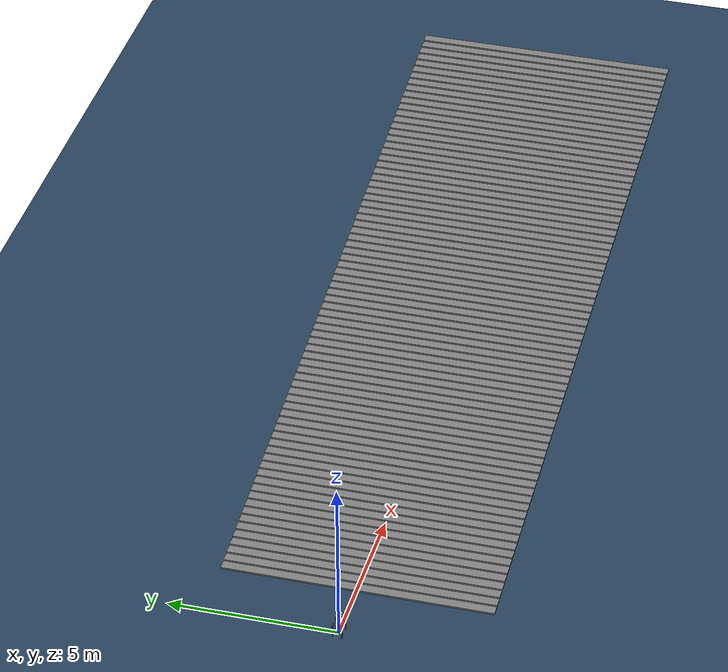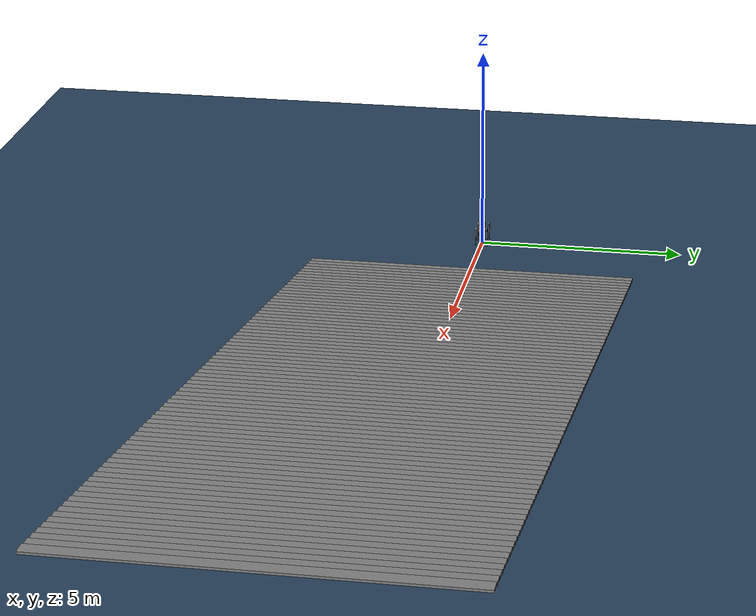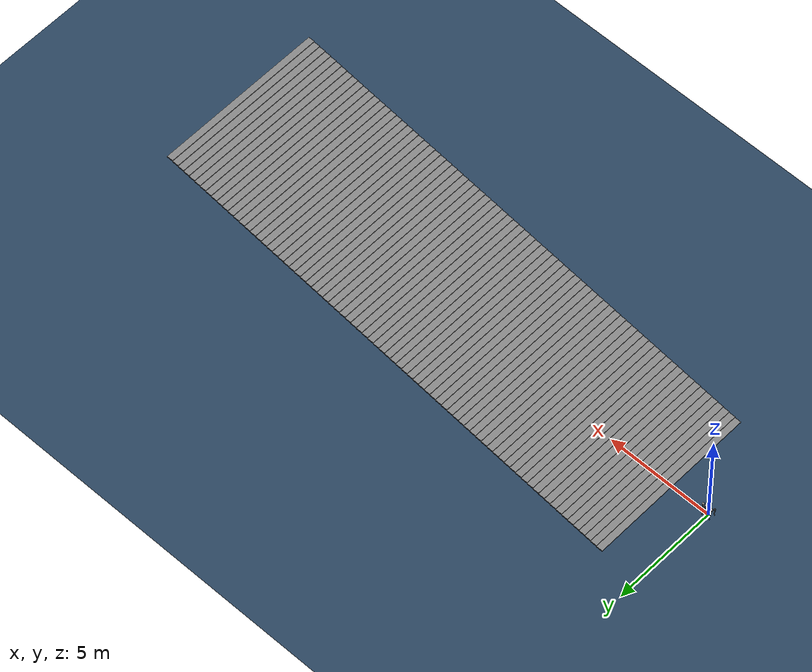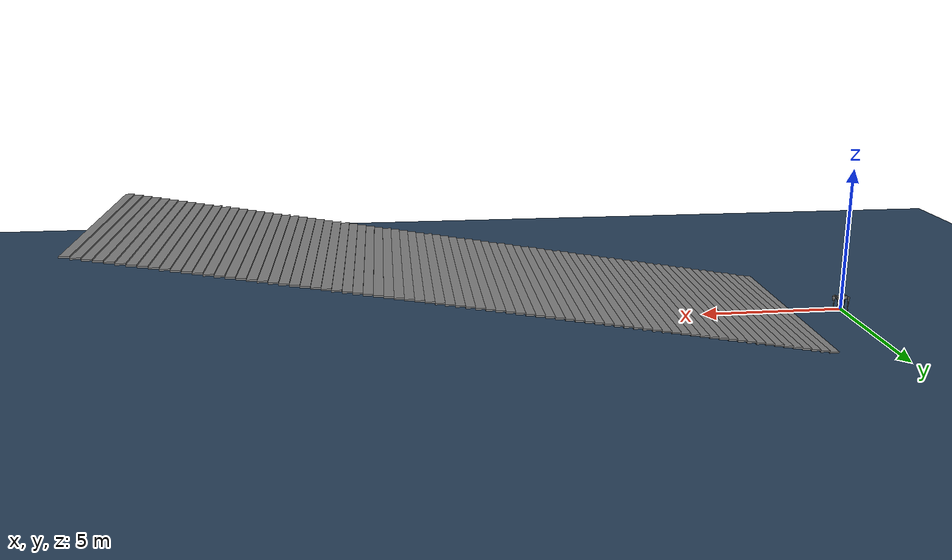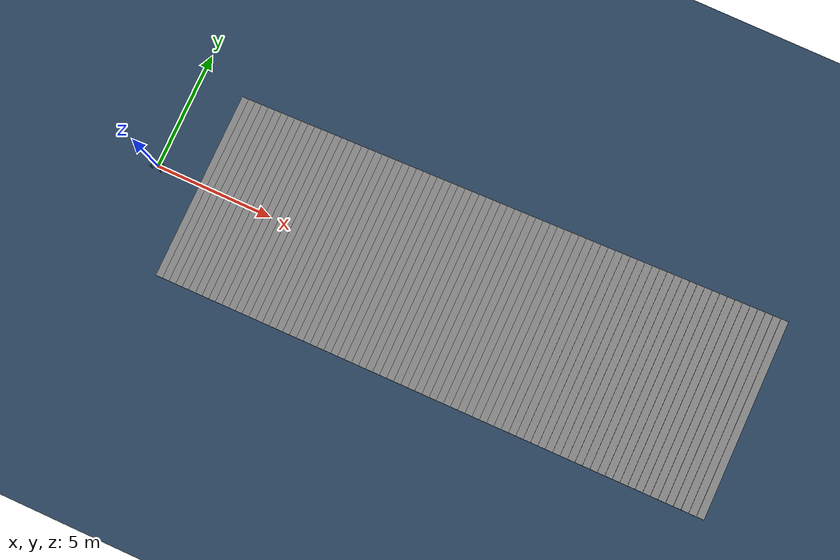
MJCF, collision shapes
<mujoco model="go2 scene">
    <include file="go2.xml"/>

    <statistic center="0 0 0.1" extent="0.8"/>

    <visual>
        <headlight diffuse="0.6 0.6 0.6" ambient="0.3 0.3 0.3" specular="0 0 0"/>
        <rgba haze="0.15 0.25 0.35 1"/>
        <global azimuth="-130" elevation="-20"/>
    </visual>

    <asset>
        <texture type="skybox" builtin="gradient" rgb1="0.3 0.5 0.7" rgb2="0 0 0" width="512" height="3072"/>
        <texture type="2d" name="groundplane" builtin="checker" mark="edge" rgb1="0.2 0.3 0.4" rgb2="0.1 0.2 0.3"
                 markrgb="0.8 0.8 0.8" width="300" height="300"/>
        <material name="groundplane" texture="groundplane" texuniform="true" texrepeat="5 5" reflectance="0.2"/>
    </asset>

    <worldbody>
        <light pos="0 0 1.5" dir="0 0 -1" directional="true"/>
        <geom name="floor" size="0 0 0.05" type="plane" material="groundplane"/>

        <!--slope-->
        <!-- -10° 围绕 Y 轴倾斜（板子沿 +x 方向形成坡面） -->
        <!-- -20° 围绕 Y 轴倾斜（板子沿 +x 方向形成坡面） -->
        <!-- -30° 围绕 Y 轴倾斜（板子沿 +x 方向形成坡面） -->
        <!-- -40° 围绕 Y 轴倾斜（板子沿 +x 方向形成坡面） -->

        <!--stair15-->
        <!--    stair10    -->

        <!--    stair5    -->
                <geom pos="2.0 0 0.025" type="box" size="0.15 4 0.025" quat="1.0 0 0 0"/>
                <geom pos="2.3 0 0.075" type="box" size="0.15 4 0.025" quat="1.0 0 0 0"/>
                <geom pos="2.6 0 0.125" type="box" size="0.15 4 0.025" quat="1.0 0 0 0"/>
                <geom pos="2.9 0 0.175" type="box" size="0.15 4 0.025" quat="1.0 0 0 0"/>
                <geom pos="3.2 0 0.225" type="box" size="0.15 4 0.025" quat="1.0 0 0 0"/>
                <geom pos="3.5 0 0.275" type="box" size="0.15 4 0.025" quat="1.0 0 0 0"/>
                <geom pos="3.8 0 0.325" type="box" size="0.15 4 0.025" quat="1.0 0 0 0"/>
                <geom pos="4.1 0 0.375" type="box" size="0.15 4 0.025" quat="1.0 0 0 0"/>
                <geom pos="4.4 0 0.425" type="box" size="0.15 4 0.025" quat="1.0 0 0 0"/>
                <geom pos="4.7 0 0.475" type="box" size="0.15 4 0.025" quat="1.0 0 0 0"/>
                <geom pos="5.0 0 0.525" type="box" size="0.15 4 0.025" quat="1.0 0 0 0"/>
                <geom pos="5.3 0 0.575" type="box" size="0.15 4 0.025" quat="1.0 0 0 0"/>
                <geom pos="5.6 0 0.625" type="box" size="0.15 4 0.025" quat="1.0 0 0 0"/>
                <geom pos="5.9 0 0.675" type="box" size="0.15 4 0.025" quat="1.0 0 0 0"/>
                <geom pos="6.2 0 0.725" type="box" size="0.15 4 0.025" quat="1.0 0 0 0"/>
                <geom pos="6.5 0 0.775" type="box" size="0.15 4 0.025" quat="1.0 0 0 0"/>
                <geom pos="6.8 0 0.825" type="box" size="0.15 4 0.025" quat="1.0 0 0 0"/>
                <geom pos="7.1 0 0.875" type="box" size="0.15 4 0.025" quat="1.0 0 0 0"/>
                <geom pos="7.4 0 0.925" type="box" size="0.15 4 0.025" quat="1.0 0 0 0"/>
                <geom pos="7.7 0 0.975" type="box" size="0.15 4 0.025" quat="1.0 0 0 0"/>
                <geom pos="8.0 0 1.025" type="box" size="0.15 4 0.025" quat="1.0 0 0 0"/>
                <geom pos="8.3 0 1.075" type="box" size="0.15 4 0.025" quat="1.0 0 0 0"/>
                <geom pos="8.6 0 1.125" type="box" size="0.15 4 0.025" quat="1.0 0 0 0"/>
                <geom pos="8.9 0 1.175" type="box" size="0.15 4 0.025" quat="1.0 0 0 0"/>
                <geom pos="9.2 0 1.225" type="box" size="0.15 4 0.025" quat="1.0 0 0 0"/>
                <geom pos="9.5 0 1.275" type="box" size="0.15 4 0.025" quat="1.0 0 0 0"/>
                <geom pos="9.8 0 1.325" type="box" size="0.15 4 0.025" quat="1.0 0 0 0"/>
                <geom pos="10.1 0 1.375" type="box" size="0.15 4 0.025" quat="1.0 0 0 0"/>
                <geom pos="10.4 0 1.425" type="box" size="0.15 4 0.025" quat="1.0 0 0 0"/>
                <geom pos="10.7 0 1.475" type="box" size="0.15 4 0.025" quat="1.0 0 0 0"/>
                <geom pos="11.0 0 1.525" type="box" size="0.15 4 0.025" quat="1.0 0 0 0"/>
                <geom pos="11.3 0 1.575" type="box" size="0.15 4 0.025" quat="1.0 0 0 0"/>
                <geom pos="11.6 0 1.625" type="box" size="0.15 4 0.025" quat="1.0 0 0 0"/>
                <geom pos="11.9 0 1.675" type="box" size="0.15 4 0.025" quat="1.0 0 0 0"/>
                <geom pos="12.2 0 1.725" type="box" size="0.15 4 0.025" quat="1.0 0 0 0"/>
                <geom pos="12.5 0 1.775" type="box" size="0.15 4 0.025" quat="1.0 0 0 0"/>
                <geom pos="12.8 0 1.825" type="box" size="0.15 4 0.025" quat="1.0 0 0 0"/>
                <geom pos="13.1 0 1.875" type="box" size="0.15 4 0.025" quat="1.0 0 0 0"/>
                <geom pos="13.4 0 1.925" type="box" size="0.15 4 0.025" quat="1.0 0 0 0"/>
                <geom pos="13.7 0 1.975" type="box" size="0.15 4 0.025" quat="1.0 0 0 0"/>
                <geom pos="14.0 0 2.025" type="box" size="0.15 4 0.025" quat="1.0 0 0 0"/>
                <geom pos="14.3 0 2.075" type="box" size="0.15 4 0.025" quat="1.0 0 0 0"/>
                <geom pos="14.6 0 2.125" type="box" size="0.15 4 0.025" quat="1.0 0 0 0"/>
                <geom pos="14.9 0 2.175" type="box" size="0.15 4 0.025" quat="1.0 0 0 0"/>
                <geom pos="15.2 0 2.225" type="box" size="0.15 4 0.025" quat="1.0 0 0 0"/>
                <geom pos="15.5 0 2.275" type="box" size="0.15 4 0.025" quat="1.0 0 0 0"/>
                <geom pos="15.8 0 2.325" type="box" size="0.15 4 0.025" quat="1.0 0 0 0"/>
                <geom pos="16.1 0 2.375" type="box" size="0.15 4 0.025" quat="1.0 0 0 0"/>
                <geom pos="16.4 0 2.425" type="box" size="0.15 4 0.025" quat="1.0 0 0 0"/>
                <geom pos="16.7 0 2.475" type="box" size="0.15 4 0.025" quat="1.0 0 0 0"/>
                <geom pos="17.0 0 2.525" type="box" size="0.15 4 0.025" quat="1.0 0 0 0"/>
                <geom pos="17.3 0 2.575" type="box" size="0.15 4 0.025" quat="1.0 0 0 0"/>
                <geom pos="17.6 0 2.625" type="box" size="0.15 4 0.025" quat="1.0 0 0 0"/>
                <geom pos="17.9 0 2.675" type="box" size="0.15 4 0.025" quat="1.0 0 0 0"/>
                <geom pos="18.2 0 2.725" type="box" size="0.15 4 0.025" quat="1.0 0 0 0"/>
                <geom pos="18.5 0 2.775" type="box" size="0.15 4 0.025" quat="1.0 0 0 0"/>
                <geom pos="18.8 0 2.825" type="box" size="0.15 4 0.025" quat="1.0 0 0 0"/>
                <geom pos="19.1 0 2.875" type="box" size="0.15 4 0.025" quat="1.0 0 0 0"/>
                <geom pos="19.4 0 2.925" type="box" size="0.15 4 0.025" quat="1.0 0 0 0"/>
                <geom pos="19.7 0 2.975" type="box" size="0.15 4 0.025" quat="1.0 0 0 0"/>
                <geom pos="20.0 0 3.025" type="box" size="0.15 4 0.025" quat="1.0 0 0 0"/>
                <geom pos="20.3 0 3.075" type="box" size="0.15 4 0.025" quat="1.0 0 0 0"/>
                <geom pos="20.6 0 3.125" type="box" size="0.15 4 0.025" quat="1.0 0 0 0"/>
                <geom pos="20.9 0 3.175" type="box" size="0.15 4 0.025" quat="1.0 0 0 0"/>
                <geom pos="21.2 0 3.225" type="box" size="0.15 4 0.025" quat="1.0 0 0 0"/>
                <geom pos="21.5 0 3.275" type="box" size="0.15 4 0.025" quat="1.0 0 0 0"/>
                <geom pos="21.8 0 3.325" type="box" size="0.15 4 0.025" quat="1.0 0 0 0"/>
                <geom pos="22.1 0 3.375" type="box" size="0.15 4 0.025" quat="1.0 0 0 0"/>
                <geom pos="22.4 0 3.425" type="box" size="0.15 4 0.025" quat="1.0 0 0 0"/>
                <geom pos="22.7 0 3.475" type="box" size="0.15 4 0.025" quat="1.0 0 0 0"/>
                <geom pos="23.0 0 3.525" type="box" size="0.15 4 0.025" quat="1.0 0 0 0"/>
                <geom pos="23.3 0 3.575" type="box" size="0.15 4 0.025" quat="1.0 0 0 0"/>
                <geom pos="23.6 0 3.625" type="box" size="0.15 4 0.025" quat="1.0 0 0 0"/>
                <geom pos="23.9 0 3.675" type="box" size="0.15 4 0.025" quat="1.0 0 0 0"/>
                <geom pos="24.2 0 3.725" type="box" size="0.15 4 0.025" quat="1.0 0 0 0"/>
                <geom pos="24.5 0 3.775" type="box" size="0.15 4 0.025" quat="1.0 0 0 0"/>
                <geom pos="24.8 0 3.825" type="box" size="0.15 4 0.025" quat="1.0 0 0 0"/>

<!-- box -->
    <!-- box 地形整体包在一个 body 里 -->
      <!-- 这里使用：grid_width = 0.45, N = 4, box 半长/半宽 = grid_width/2 = 0.225 -->
      <!-- 中心坐标：[-0.675, -0.225, 0.225, 0.675]（以原点为中心） -->
      <!-- half_height = 0.06，z = 0.06，让 box 放在 z=0 之上 -->

      <!-- row 0 -->

<!--      &lt;!&ndash; row 1 &ndash;&gt;-->

<!--      &lt;!&ndash; row 2 &ndash;&gt;-->

<!--      &lt;!&ndash; row 3 &ndash;&gt;-->

    </worldbody>
</mujoco>

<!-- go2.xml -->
<mujoco model="go2">
  <compiler angle="radian" meshdir="assets" autolimits="true" />

  <option cone="elliptic" impratio="100" />

  <default>
    <default class="go2">
      <geom friction="0.4" margin="0.001" condim="1"/>
      <joint axis="0 1 0" damping="0.0" armature="0.01" frictionloss="0.0"/>
      <motor ctrlrange="-23.7 23.7"/>
      <default class="abduction">
        <joint axis="1 0 0" range="-1.0472 1.0472"/>
      </default>
      <default class="hip">
        <default class="front_hip">
          <joint range="-1.5708 3.4907"/>
        </default>
        <default class="back_hip">
          <joint range="-0.5236 4.5379"/>
        </default>
      </default>
      <default class="knee">
        <joint range="-2.7227 -0.83776"/>
        <motor ctrlrange="-45.43 45.43"/>
      </default>
      <default class="visual">
        <geom type="mesh" contype="0" conaffinity="0" group="2"/>
      </default>
      <default class="collision">
        <geom group="3"/>
        <default class="foot">
          <geom size="0.022" pos="-0.002 0 -0.213" priority="1" condim="6"
            friction="1.5 0.02 0.01"/>
        </default>
      </default>
    </default>
  </default>

  <asset>
    <material name="metal" rgba=".9 .95 .95 1" />
    <material name="black" rgba="0 0 0 1" />
    <material name="white" rgba="1 1 1 1" />
    <material name="gray" rgba="0.671705 0.692426 0.774270 1" />

    <mesh file="base_0.obj" />
    <mesh file="base_1.obj" />
    <mesh file="base_2.obj" />
    <mesh file="base_3.obj" />
    <mesh file="base_4.obj" />
    <mesh file="hip_0.obj" />
    <mesh file="hip_1.obj" />
    <mesh file="thigh_0.obj" />
    <mesh file="thigh_1.obj" />
    <mesh file="thigh_mirror_0.obj" />
    <mesh file="thigh_mirror_1.obj" />
    <mesh file="calf_0.obj" />
    <mesh file="calf_1.obj" />
    <mesh file="calf_mirror_0.obj" />
    <mesh file="calf_mirror_1.obj" />
    <mesh file="foot.obj" />
  </asset>

  <worldbody>
    <body name="base_link" pos="0 0 0.445" childclass="go2">
      <inertial pos="0.021112 0 -0.005366" quat="-0.000543471 0.713435 -0.00173769 0.700719"
        mass="6.921"
        diaginertia="0.107027 0.0980771 0.0244531" />
      <freejoint />
      <geom mesh="base_0" material="black" class="visual" />
      <geom mesh="base_1" material="black" class="visual" />
      <geom mesh="base_2" material="black" class="visual" />
      <geom mesh="base_3" material="white" class="visual" />
      <geom mesh="base_4" material="gray" class="visual" />
      <geom size="0.1881 0.04675 0.057" type="box" class="collision" />
      <geom size="0.05 0.045" pos="0.285 0 0.01" type="cylinder" class="collision" />
      <geom size="0.047" pos="0.293 0 -0.06" class="collision" />
      <site name="imu" pos="-0.02557 0 0.04232" />
      <body name="FL_hip" pos="0.1934 0.0465 0">
        <inertial pos="-0.0054 0.00194 -0.000105" quat="0.497014 0.499245 0.505462 0.498237"
          mass="0.678"
          diaginertia="0.00088403 0.000596003 0.000479967" />
        <joint name="FL_hip_joint" class="abduction" />
        <geom mesh="hip_0" material="metal" class="visual" />
        <geom mesh="hip_1" material="gray" class="visual" />
        <geom size="0.046 0.02" pos="0 0.08 0" quat="1 1 0 0" type="cylinder" class="collision" />
        <body name="FL_thigh" pos="0 0.0955 0">
          <inertial pos="-0.00374 -0.0223 -0.0327" quat="0.829533 0.0847635 -0.0200632 0.551623"
            mass="1.152"
            diaginertia="0.00594973 0.00584149 0.000878787" />
          <joint name="FL_thigh_joint" class="front_hip" />
          <geom mesh="thigh_0" material="metal" class="visual" />
          <geom mesh="thigh_1" material="gray" class="visual" />
          <geom size="0.1065 0.01225 0.017" pos="0 0 -0.1065" quat="0.707107 0 0.707107 0"
            type="box" class="collision" />
          <body name="FL_calf" pos="0 0 -0.213">
            <inertial pos="0.00629595 -0.000622121 -0.141417"
              quat="0.710672 0.00154099 -0.00450087 0.703508"
              mass="0.241352" diaginertia="0.0014901 0.00146356 5.31397e-05" />
            <joint name="FL_calf_joint" class="knee" />
            <geom mesh="calf_0" material="gray" class="visual" />
            <geom mesh="calf_1" material="black" class="visual" />
            <geom size="0.012 0.06" pos="0.008 0 -0.06" quat="0.994493 0 -0.104807 0"
              type="cylinder" class="collision" />
            <geom size="0.011 0.0325" pos="0.02 0 -0.148" quat="0.999688 0 0.0249974 0"
              type="cylinder" class="collision" />
            <geom pos="0 0 -0.213" mesh="foot" class="visual" material="black" />
            <geom name="FL" class="foot" />
            <body name="FL_foot" pos="0 0 -0.213" />
          </body>
        </body>
      </body>
      <body name="FR_hip" pos="0.1934 -0.0465 0">
        <inertial pos="-0.0054 -0.00194 -0.000105" quat="0.498237 0.505462 0.499245 0.497014"
          mass="0.678"
          diaginertia="0.00088403 0.000596003 0.000479967" />
        <joint name="FR_hip_joint" class="abduction" />
        <geom mesh="hip_0" material="metal" class="visual" quat="4.63268e-05 1 0 0" />
        <geom mesh="hip_1" material="gray" class="visual" quat="4.63268e-05 1 0 0" />
        <geom size="0.046 0.02" pos="0 -0.08 0" quat="0.707107 0.707107 0 0" type="cylinder"
          class="collision" />
        <body name="FR_thigh" pos="0 -0.0955 0">
          <inertial pos="-0.00374 0.0223 -0.0327" quat="0.551623 -0.0200632 0.0847635 0.829533"
            mass="1.152"
            diaginertia="0.00594973 0.00584149 0.000878787" />
          <joint name="FR_thigh_joint" class="front_hip" />
          <geom mesh="thigh_mirror_0" material="metal" class="visual" />
          <geom mesh="thigh_mirror_1" material="gray" class="visual" />
          <geom size="0.1065 0.01225 0.017" pos="0 0 -0.1065" quat="0.707107 0 0.707107 0"
            type="box" class="collision" />
          <body name="FR_calf" pos="0 0 -0.213">
            <inertial pos="0.00629595 0.000622121 -0.141417"
              quat="0.703508 -0.00450087 0.00154099 0.710672"
              mass="0.241352" diaginertia="0.0014901 0.00146356 5.31397e-05" />
            <joint name="FR_calf_joint" class="knee" />
            <geom mesh="calf_mirror_0" material="gray" class="visual" />
            <geom mesh="calf_mirror_1" material="black" class="visual" />
            <geom size="0.013 0.06" pos="0.01 0 -0.06" quat="0.995004 0 -0.0998334 0"
              type="cylinder" class="collision" />
            <geom size="0.011 0.0325" pos="0.02 0 -0.148" quat="0.999688 0 0.0249974 0"
              type="cylinder" class="collision" />
            <geom pos="0 0 -0.213" mesh="foot" class="visual" material="black" />
            <geom name="FR" class="foot" />
            <body name="FR_foot" pos="0 0 -0.213" />
          </body>
        </body>
      </body>
      <body name="RL_hip" pos="-0.1934 0.0465 0">
        <inertial pos="0.0054 0.00194 -0.000105" quat="0.505462 0.498237 0.497014 0.499245"
          mass="0.678"
          diaginertia="0.00088403 0.000596003 0.000479967" />
        <joint name="RL_hip_joint" class="abduction" />
        <geom mesh="hip_0" material="metal" class="visual" quat="4.63268e-05 0 1 0" />
        <geom mesh="hip_1" material="gray" class="visual" quat="4.63268e-05 0 1 0" />
        <geom size="0.046 0.02" pos="0 0.08 0" quat="0.707107 0.707107 0 0" type="cylinder"
          class="collision" />
        <body name="RL_thigh" pos="0 0.0955 0">
          <inertial pos="-0.00374 -0.0223 -0.0327" quat="0.829533 0.0847635 -0.0200632 0.551623"
            mass="1.152"
            diaginertia="0.00594973 0.00584149 0.000878787" />
          <joint name="RL_thigh_joint" class="back_hip" />
          <geom mesh="thigh_0" material="metal" class="visual" />
          <geom mesh="thigh_1" material="gray" class="visual" />
          <geom size="0.1065 0.01225 0.017" pos="0 0 -0.1065" quat="0.707107 0 0.707107 0"
            type="box" class="collision" />
          <body name="RL_calf" pos="0 0 -0.213">
            <inertial pos="0.00629595 -0.000622121 -0.141417"
              quat="0.710672 0.00154099 -0.00450087 0.703508"
              mass="0.241352" diaginertia="0.0014901 0.00146356 5.31397e-05" />
            <joint name="RL_calf_joint" class="knee" />
            <geom mesh="calf_0" material="gray" class="visual" />
            <geom mesh="calf_1" material="black" class="visual" />
            <geom size="0.013 0.06" pos="0.01 0 -0.06" quat="0.995004 0 -0.0998334 0"
              type="cylinder" class="collision" />
            <geom size="0.011 0.0325" pos="0.02 0 -0.148" quat="0.999688 0 0.0249974 0"
              type="cylinder" class="collision" />
            <geom pos="0 0 -0.213" mesh="foot" class="visual" material="black" />
            <geom name="RL" class="foot" />
            <body name="RL_foot" pos="0 0 -0.213" />
          </body>
        </body>
      </body>
      <body name="RR_hip" pos="-0.1934 -0.0465 0">
        <inertial pos="0.0054 -0.00194 -0.000105" quat="0.499245 0.497014 0.498237 0.505462"
          mass="0.678"
          diaginertia="0.00088403 0.000596003 0.000479967" />
        <joint name="RR_hip_joint" class="abduction" />
        <geom mesh="hip_0" material="metal" class="visual"
          quat="2.14617e-09 4.63268e-05 4.63268e-05 -1" />
        <geom mesh="hip_1" material="gray" class="visual"
          quat="2.14617e-09 4.63268e-05 4.63268e-05 -1" />
        <geom size="0.046 0.02" pos="0 -0.08 0" quat="0.707107 0.707107 0 0" type="cylinder"
          class="collision" />
        <body name="RR_thigh" pos="0 -0.0955 0">
          <inertial pos="-0.00374 0.0223 -0.0327" quat="0.551623 -0.0200632 0.0847635 0.829533"
            mass="1.152"
            diaginertia="0.00594973 0.00584149 0.000878787" />
          <joint name="RR_thigh_joint" class="back_hip" />
          <geom mesh="thigh_mirror_0" material="metal" class="visual" />
          <geom mesh="thigh_mirror_1" material="gray" class="visual" />
          <geom size="0.1065 0.01225 0.017" pos="0 0 -0.1065" quat="0.707107 0 0.707107 0"
            type="box" class="collision" />
          <body name="RR_calf" pos="0 0 -0.213">
            <inertial pos="0.00629595 0.000622121 -0.141417"
              quat="0.703508 -0.00450087 0.00154099 0.710672"
              mass="0.241352" diaginertia="0.0014901 0.00146356 5.31397e-05" />
            <joint name="RR_calf_joint" class="knee" />
            <geom mesh="calf_mirror_0" material="gray" class="visual" />
            <geom mesh="calf_mirror_1" material="black" class="visual" />
            <geom size="0.013 0.06" pos="0.01 0 -0.06" quat="0.995004 0 -0.0998334 0"
              type="cylinder" class="collision" />
            <geom size="0.011 0.0325" pos="0.02 0 -0.148" quat="0.999688 0 0.0249974 0"
              type="cylinder" class="collision" />
            <geom pos="0 0 -0.213" mesh="foot" class="visual" material="black" />
            <geom name="RR" class="foot" />
            <body name="RR_foot" pos="0 0 -0.213" />
          </body>
        </body>
      </body>
    </body>
  </worldbody>

  <actuator>
    <motor class="abduction" name="FR_hip" joint="FR_hip_joint" />
    <motor class="hip" name="FR_thigh" joint="FR_thigh_joint" />
    <motor class="knee" name="FR_calf" joint="FR_calf_joint" />
    <motor class="abduction" name="FL_hip" joint="FL_hip_joint" />
    <motor class="hip" name="FL_thigh" joint="FL_thigh_joint" />
    <motor class="knee" name="FL_calf" joint="FL_calf_joint" />
    <motor class="abduction" name="RR_hip" joint="RR_hip_joint" />
    <motor class="hip" name="RR_thigh" joint="RR_thigh_joint" />
    <motor class="knee" name="RR_calf" joint="RR_calf_joint" />
    <motor class="abduction" name="RL_hip" joint="RL_hip_joint" />
    <motor class="hip" name="RL_thigh" joint="RL_thigh_joint" />
    <motor class="knee" name="RL_calf" joint="RL_calf_joint" />
  </actuator>

  <sensor>
    <jointpos name="FR_hip_pos" joint="FR_hip_joint" />
    <jointpos name="FR_thigh_pos" joint="FR_thigh_joint" />
    <jointpos name="FR_calf_pos" joint="FR_calf_joint" />
    <jointpos name="FL_hip_pos" joint="FL_hip_joint" />
    <jointpos name="FL_thigh_pos" joint="FL_thigh_joint" />
    <jointpos name="FL_calf_pos" joint="FL_calf_joint" />
    <jointpos name="RR_hip_pos" joint="RR_hip_joint" />
    <jointpos name="RR_thigh_pos" joint="RR_thigh_joint" />
    <jointpos name="RR_calf_pos" joint="RR_calf_joint" />
    <jointpos name="RL_hip_pos" joint="RL_hip_joint" />
    <jointpos name="RL_thigh_pos" joint="RL_thigh_joint" />
    <jointpos name="RL_calf_pos" joint="RL_calf_joint" />

    <jointvel name="FR_hip_vel" joint="FR_hip_joint" />
    <jointvel name="FR_thigh_vel" joint="FR_thigh_joint" />
    <jointvel name="FR_calf_vel" joint="FR_calf_joint" />
    <jointvel name="FL_hip_vel" joint="FL_hip_joint" />
    <jointvel name="FL_thigh_vel" joint="FL_thigh_joint" />
    <jointvel name="FL_calf_vel" joint="FL_calf_joint" />
    <jointvel name="RR_hip_vel" joint="RR_hip_joint" />
    <jointvel name="RR_thigh_vel" joint="RR_thigh_joint" />
    <jointvel name="RR_calf_vel" joint="RR_calf_joint" />
    <jointvel name="RL_hip_vel" joint="RL_hip_joint" />
    <jointvel name="RL_thigh_vel" joint="RL_thigh_joint" />
    <jointvel name="RL_calf_vel" joint="RL_calf_joint" />

    <jointactuatorfrc name="FR_hip_torque" joint="FR_hip_joint" noise="0.01" />
    <jointactuatorfrc name="FR_thigh_torque" joint="FR_thigh_joint" noise="0.01" />
    <jointactuatorfrc name="FR_calf_torque" joint="FR_calf_joint" noise="0.01" />
    <jointactuatorfrc name="FL_hip_torque" joint="FL_hip_joint" noise="0.01" />
    <jointactuatorfrc name="FL_thigh_torque" joint="FL_thigh_joint" noise="0.01" />
    <jointactuatorfrc name="FL_calf_torque" joint="FL_calf_joint" noise="0.01" />
    <jointactuatorfrc name="RR_hip_torque" joint="RR_hip_joint" noise="0.01" />
    <jointactuatorfrc name="RR_thigh_torque" joint="RR_thigh_joint" noise="0.01" />
    <jointactuatorfrc name="RR_calf_torque" joint="RR_calf_joint" noise="0.01" />
    <jointactuatorfrc name="RL_hip_torque" joint="RL_hip_joint" noise="0.01" />
    <jointactuatorfrc name="RL_thigh_torque" joint="RL_thigh_joint" noise="0.01" />
    <jointactuatorfrc name="RL_calf_torque" joint="RL_calf_joint" noise="0.01" />

    <framequat name="imu_quat" objtype="site" objname="imu" />
    <gyro name="imu_gyro" site="imu" />
    <accelerometer name="imu_acc" site="imu" />
    <velocimeter name="imu_vel" site="imu" />

    <framepos name="frame_pos" objtype="site" objname="imu" />
    <framelinvel name="frame_vel" objtype="site" objname="imu" />
  </sensor>

  <keyframe>
    <key name="home" qpos="0 0 0.27 1 0 0 0 0 0.9 -1.8 0 0.9 -1.8 0 0.9 -1.8 0 0.9 -1.8"
      ctrl="0 0.9 -1.8 0 0.9 -1.8 0 0.9 -1.8 0 0.9 -1.8" />
  </keyframe>
</mujoco>
